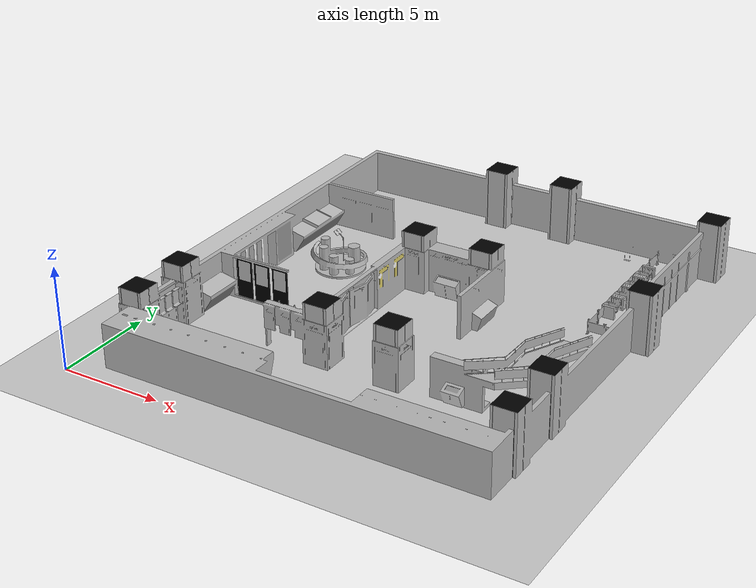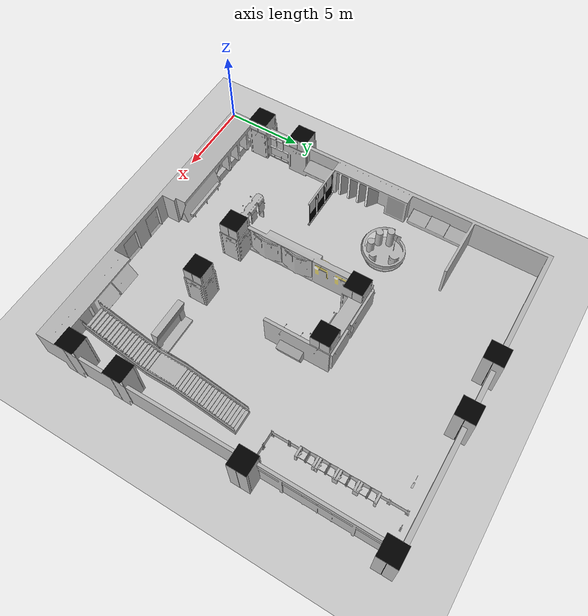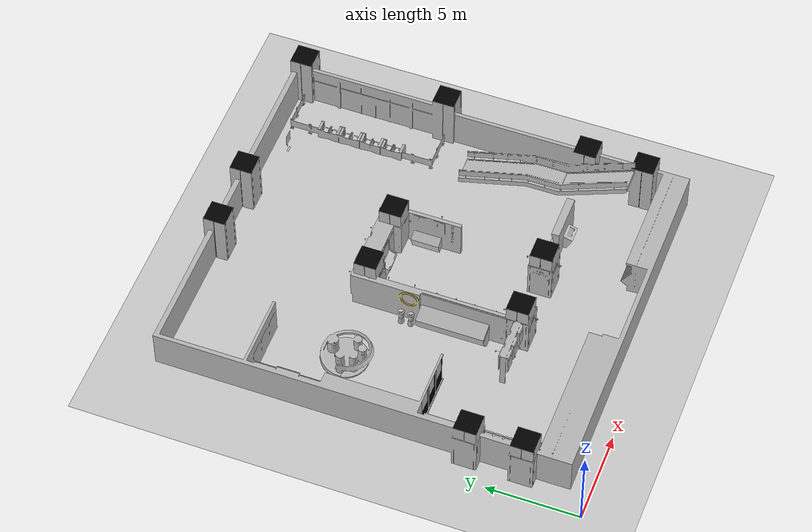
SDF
<sdf version="1.7">
 <world name="default">
  <model name="ground_plane">
   <static>1</static>
   <link name="link">
    <collision name="collision">
     <geometry><plane><normal>0 0 1</normal><size>100 100</size></plane></geometry>
     <surface><friction><ode><mu>100</mu><mu2>50</mu2></ode></friction></surface>
    </collision>
    <visual name="visual">
     <cast_shadows>0</cast_shadows>
     <geometry><plane><normal>0 0 1</normal><size>100 100</size></plane></geometry>
     <material>
      <script><uri>file://media/materials/scripts/gazebo.material</uri><name>Gazebo/Grey</name></script>
     </material>
    </visual>
   </link>
  </model>
  <model name="iscas_museum_2">
   <link name="link">
    <inertial><mass>15</mass></inertial>
    <collision name="collision">
     <pose>0 0 0 0 0 -1.57</pose>
     <geometry><mesh><uri>model://iscas_museum/meshes/ISCAS_museum.dae</uri></mesh></geometry>
    </collision>
    <visual name="visual">
     <pose>0 0 0 0 0 -1.57</pose>
     <geometry><mesh><uri>model://iscas_museum/meshes/ISCAS_museum.dae</uri></mesh></geometry>
    </visual>
   </link>
   <static>1</static>
   <pose>10.6349 11.777 0 0 -0 0</pose>
  </model>
 </world>
</sdf>
